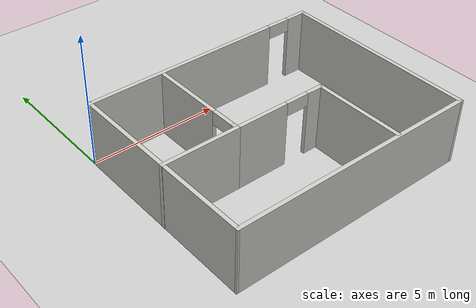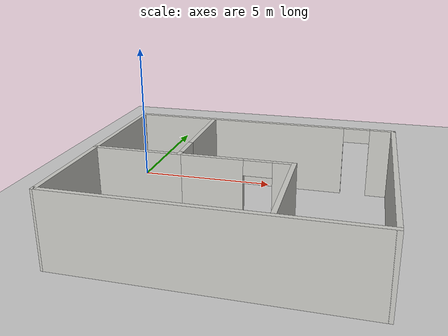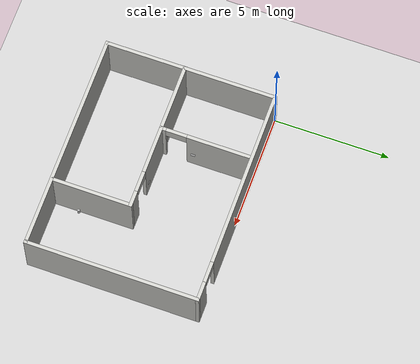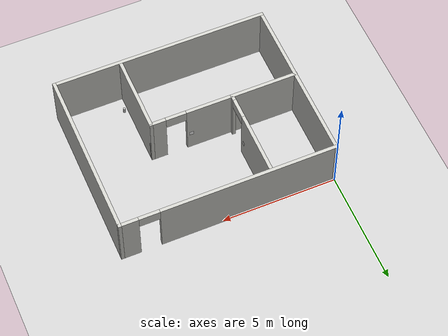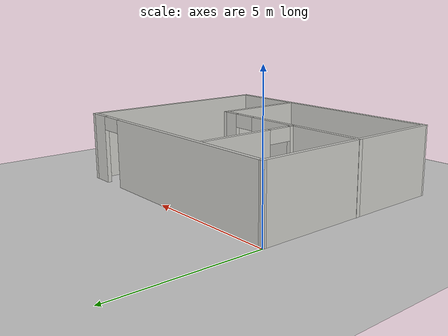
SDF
<sdf version="1.6">
 <world name="default">
  <light name="sun" type="directional">
   <pose>0 0 10 0 -0 0</pose>
   <diffuse>0.8 0.8 0.8 1</diffuse>
   <specular>0.1 0.1 0.1 1</specular>
   <attenuation>
    <range>1000</range>
    <constant>0.9</constant>
    <linear>0.01</linear>
    <quadratic>0.001</quadratic>
   </attenuation>
   <direction>-0.5 0.5 -1</direction>
  </light>
  <model name="ground_plane">
   <static>1</static>
   <link name="link">
    <collision name="collision">
     <geometry><plane><normal>0 0 1</normal><size>100 100</size></plane></geometry>
     <surface><friction><ode><mu>100</mu><mu2>50</mu2></ode></friction></surface>
    </collision>
    <visual name="visual">
     <cast_shadows>0</cast_shadows>
     <geometry><plane><normal>0 0 1</normal><size>100 100</size></plane></geometry>
     <material>
      <script><uri>file://media/materials/scripts/gazebo.material</uri><name>Gazebo/Grey</name></script>
     </material>
    </visual>
   </link>
  </model>
  <gravity>0 0 -9.8</gravity>
  <magnetic_field>6e-06 2.3e-05 -4.2e-05</magnetic_field>
  <atmosphere type="adiabatic"/>
  <physics name="default_physics" default="0" type="ode">
   <max_step_size>0.001</max_step_size>
   <real_time_factor>1</real_time_factor>
   <real_time_update_rate>1000</real_time_update_rate>
  </physics>
  <scene><ambient>0.4 0.4 0.4 1</ambient><background>0.7 0.7 0.7 1</background><shadows>1</shadows></scene>
  <spherical_coordinates>
   <surface_model>EARTH_WGS84</surface_model>
   <latitude_deg>0</latitude_deg>
   <longitude_deg>0</longitude_deg>
   <elevation>0</elevation>
   <heading_deg>0</heading_deg>
  </spherical_coordinates>
  <model name="bioloid_house">
   <pose>4.72569 -3.70695 0 0 -0 0</pose>
   <link name="Wall_0">
    <collision name="Wall_0_Collision">
     <geometry><box><size>7.50023 0.15 2.5</size></box></geometry>
     <pose>0 0 1.25 0 -0 0</pose>
    </collision>
    <visual name="Wall_0_Visual">
     <pose>0 0 1.25 0 -0 0</pose>
     <geometry><box><size>7.50023 0.15 2.5</size></box></geometry>
     <material>
      <script><uri>file://media/materials/scripts/gazebo.material</uri><name>Gazebo/CeilingTiled</name></script>
      <ambient>1 1 1 1</ambient>
     </material>
    </visual>
    <pose>-4.66853 0 0 0 0 -1.56965</pose>
   </link>
   <link name="Wall_1">
    <collision name="Wall_1_Collision">
     <geometry><box><size>9.49158 0.15 2.5</size></box></geometry>
     <pose>0 0 1.25 0 -0 0</pose>
    </collision>
    <visual name="Wall_1_Visual">
     <pose>0 0 1.25 0 -0 0</pose>
     <geometry><box><size>9.49158 0.15 2.5</size></box></geometry>
     <material>
      <script><uri>file://media/materials/scripts/gazebo.material</uri><name>Gazebo/CeilingTiled</name></script>
      <ambient>1 1 1 1</ambient>
     </material>
    </visual>
    <pose>0.006466 -3.675 0 0 -0 2.5e-05</pose>
   </link>
   <link name="Wall_2">
    <collision name="Wall_2_Collision">
     <geometry><box><size>7.5 0.15 2.5</size></box></geometry>
     <pose>0 0 1.25 0 -0 0</pose>
    </collision>
    <visual name="Wall_2_Visual">
     <pose>0 0 1.25 0 -0 0</pose>
     <geometry><box><size>7.5 0.15 2.5</size></box></geometry>
     <material>
      <script><uri>file://media/materials/scripts/gazebo.material</uri><name>Gazebo/CeilingTiled</name></script>
      <ambient>1 1 1 1</ambient>
     </material>
    </visual>
    <pose>4.67726 0.000115 0 0 -0 1.5708</pose>
   </link>
   <link name="Wall_3">
    <pose>0.002257 3.67511 0 0 -0 3.14159</pose>
    <visual name="Wall_3_Visual_0">
     <pose>-4.31524 0 1.25 0 -0 0</pose>
     <geometry><box><size>0.869524 0.15 2.5</size></box></geometry>
     <material>
      <script><uri>file://media/materials/scripts/gazebo.material</uri><name>Gazebo/CeilingTiled</name></script>
      <ambient>1 1 1 1</ambient>
     </material>
    </visual>
    <collision name="Wall_3_Collision_0">
     <geometry><box><size>0.869524 0.15 2.5</size></box></geometry>
     <pose>-4.31524 0 1.25 0 -0 0</pose>
    </collision>
    <visual name="Wall_3_Visual_1">
     <pose>0.884762 0 1.25 0 -0 0</pose>
     <geometry><box><size>7.73048 0.15 2.5</size></box></geometry>
     <material>
      <script><uri>file://media/materials/scripts/gazebo.material</uri><name>Gazebo/CeilingTiled</name></script>
      <ambient>1 1 1 1</ambient>
     </material>
    </visual>
    <collision name="Wall_3_Collision_1">
     <geometry><box><size>7.73048 0.15 2.5</size></box></geometry>
     <pose>0.884762 0 1.25 0 -0 0</pose>
    </collision>
    <visual name="Wall_3_Visual_2">
     <pose>-3.43048 0 2.25 0 -0 0</pose>
     <geometry><box><size>0.9 0.15 0.5</size></box></geometry>
     <material>
      <script><uri>file://media/materials/scripts/gazebo.material</uri><name>Gazebo/CeilingTiled</name></script>
      <ambient>1 1 1 1</ambient>
     </material>
    </visual>
    <collision name="Wall_3_Collision_2">
     <geometry><box><size>0.9 0.15 0.5</size></box></geometry>
     <pose>-3.43048 0 2.25 0 -0 0</pose>
    </collision>
   </link>
   <link name="Wall_5">
    <pose>-1.82726 1.66705 0 0 0 -1.5708</pose>
    <visual name="Wall_5_Visual_0">
     <pose>-0.596948 0 1.25 0 -0 0</pose>
     <geometry><box><size>2.8061 0.15 2.5</size></box></geometry>
     <material>
      <script><uri>file://media/materials/scripts/gazebo.material</uri><name>Gazebo/CeilingTiled</name></script>
      <ambient>1 1 1 1</ambient>
     </material>
    </visual>
    <collision name="Wall_5_Collision_0">
     <geometry><box><size>2.8061 0.15 2.5</size></box></geometry>
     <pose>-0.596948 0 1.25 0 -0 0</pose>
    </collision>
    <visual name="Wall_5_Visual_1">
     <pose>1.85305 0 1.25 0 -0 0</pose>
     <geometry><box><size>0.293896 0.15 2.5</size></box></geometry>
     <material>
      <script><uri>file://media/materials/scripts/gazebo.material</uri><name>Gazebo/CeilingTiled</name></script>
      <ambient>1 1 1 1</ambient>
     </material>
    </visual>
    <collision name="Wall_5_Collision_1">
     <geometry><box><size>0.293896 0.15 2.5</size></box></geometry>
     <pose>1.85305 0 1.25 0 -0 0</pose>
    </collision>
    <visual name="Wall_5_Visual_2">
     <pose>1.2561 0 2.25 0 -0 0</pose>
     <geometry><box><size>0.9 0.15 0.5</size></box></geometry>
     <material>
      <script><uri>file://media/materials/scripts/gazebo.material</uri><name>Gazebo/CeilingTiled</name></script>
      <ambient>1 1 1 1</ambient>
     </material>
    </visual>
    <collision name="Wall_5_Collision_2">
     <geometry><box><size>0.9 0.15 0.5</size></box></geometry>
     <pose>1.2561 0 2.25 0 -0 0</pose>
    </collision>
   </link>
   <link name="Wall_6">
    <collision name="Wall_6_Collision">
     <geometry><box><size>3 0.15 2.5</size></box></geometry>
     <pose>0 0 1.25 0 -0 0</pose>
    </collision>
    <visual name="Wall_6_Visual">
     <pose>0 0 1.25 0 -0 0</pose>
     <geometry><box><size>3 0.15 2.5</size></box></geometry>
     <material>
      <script><uri>file://media/materials/scripts/gazebo.material</uri><name>Gazebo/CeilingTiled</name></script>
      <ambient>1 1 1 1</ambient>
     </material>
    </visual>
    <pose>-3.25226 -0.257952 0 0 -0 3.14159</pose>
   </link>
   <link name="Wall_8">
    <pose>-0.027259 -0.257952 0 0 -0 0</pose>
    <visual name="Wall_8_Visual_0">
     <pose>-0.807904 0 1.25 0 -0 0</pose>
     <geometry><box><size>2.13419 0.15 2.5</size></box></geometry>
     <material>
      <script><uri>file://media/materials/scripts/gazebo.material</uri><name>Gazebo/CeilingTiled</name></script>
      <ambient>1 1 1 1</ambient>
     </material>
    </visual>
    <collision name="Wall_8_Collision_0">
     <geometry><box><size>2.13419 0.15 2.5</size></box></geometry>
     <pose>-0.807904 0 1.25 0 -0 0</pose>
    </collision>
    <visual name="Wall_8_Visual_1">
     <pose>1.5171 0 1.25 0 -0 0</pose>
     <geometry><box><size>0.715808 0.15 2.5</size></box></geometry>
     <material>
      <script><uri>file://media/materials/scripts/gazebo.material</uri><name>Gazebo/CeilingTiled</name></script>
      <ambient>1 1 1 1</ambient>
     </material>
    </visual>
    <collision name="Wall_8_Collision_1">
     <geometry><box><size>0.715808 0.15 2.5</size></box></geometry>
     <pose>1.5171 0 1.25 0 -0 0</pose>
    </collision>
    <visual name="Wall_8_Visual_2">
     <pose>0.709192 0 2.25 0 -0 0</pose>
     <geometry><box><size>0.9 0.15 0.5</size></box></geometry>
     <material>
      <script><uri>file://media/materials/scripts/gazebo.material</uri><name>Gazebo/CeilingTiled</name></script>
      <ambient>1 1 1 1</ambient>
     </material>
    </visual>
    <collision name="Wall_8_Collision_2">
     <geometry><box><size>0.9 0.15 0.5</size></box></geometry>
     <pose>0.709192 0 2.25 0 -0 0</pose>
    </collision>
   </link>
   <link name="Wall_9">
    <collision name="Wall_9_Collision">
     <geometry><box><size>3.5 0.15 2.5</size></box></geometry>
     <pose>0 0 1.25 0 -0 0</pose>
    </collision>
    <visual name="Wall_9_Visual">
     <pose>0 0 1.25 0 -0 0</pose>
     <geometry><box><size>3.5 0.15 2.5</size></box></geometry>
     <material>
      <script><uri>file://media/materials/scripts/gazebo.material</uri><name>Gazebo/CeilingTiled</name></script>
      <ambient>1 1 1 1</ambient>
     </material>
    </visual>
    <pose>1.77274 -1.93295 0 0 0 -1.5708</pose>
   </link>
   <static>1</static>
  </model>
  <model name="aruco_visual_marker_1">
   <link name="marker">
    <visual name="visual">
     <geometry><box><size>0.1778 0.1778 1e-05</size></box></geometry>
     <material>
      <script>
       <uri>model://aruco_visual_marker_1/materials/scripts</uri>
       <uri>model://aruco_visual_marker_1/materials/textures</uri>
       <name>ArucoVisualMarker1/Marker</name>
      </script>
      <ambient>1 1 1 1</ambient>
      <diffuse>1 1 1 1</diffuse>
      <specular>0 0 0 1</specular>
      <emissive>1 1 1 0</emissive>
      <shader type="vertex"><normal_map>__default__</normal_map></shader>
     </material>
    </visual>
    <collision name="collision"><geometry><box><size>0.1778 0.1778 1e-05</size></box></geometry></collision>
   </link>
   <link name="marker_pad">
    <pose frame="marker">0 0 -1e-05 0 -0 0</pose>
    <visual name="visual">
     <geometry><box><size>0.1778 0.1778 1e-05</size></box></geometry>
     <material>
      <lighting>1</lighting>
      <script><uri>file://media/materials/scripts/gazebo.material</uri><name>Gazebo/White</name></script>
      <ambient>0.3 0.3 0.3 1</ambient>
      <diffuse>0.7 0.7 0.7 1</diffuse>
      <specular>0.01 0.01 0.01 1</specular>
      <emissive>1 1 1 0</emissive>
      <shader type="vertex"><normal_map>__default__</normal_map></shader>
     </material>
    </visual>
    <collision name="collision"><geometry><box><size>0.1778 0.1778 1e-05</size></box></geometry></collision>
   </link>
   <joint name="marker_JOINT_marker_pad" type="revolute">
    <parent>marker</parent>
    <child>marker_pad</child>
    <axis>
     <xyz>0 0 1</xyz>
     <limit><upper>0</upper><lower>0</lower></limit>
     <use_parent_model_frame>0</use_parent_model_frame>
     <dynamics><spring_reference>0</spring_reference><spring_stiffness>0</spring_stiffness></dynamics>
    </axis>
   </joint>
   <static>1</static>
   <pose>2.99673 -2.56363 0.947361 0 -1.50809 -3.11559</pose>
  </model>
  <model name="aruco_visual_marker_2">
   <link name="marker">
    <visual name="visual">
     <geometry><box><size>0.1778 0.1778 1e-05</size></box></geometry>
     <material>
      <script>
       <uri>model://aruco_visual_marker_2/materials/scripts</uri>
       <uri>model://aruco_visual_marker_2/materials/textures</uri>
       <name>ArucoVisualMarker2/Marker</name>
      </script>
      <ambient>1 1 1 1</ambient>
      <diffuse>1 1 1 1</diffuse>
      <specular>0 0 0 1</specular>
      <emissive>1 1 1 0</emissive>
      <shader type="vertex"><normal_map>__default__</normal_map></shader>
     </material>
    </visual>
    <collision name="collision"><geometry><box><size>0.1778 0.1778 1e-05</size></box></geometry></collision>
   </link>
   <link name="marker_pad">
    <pose frame="marker">0 0 -1e-05 0 -0 0</pose>
    <visual name="visual">
     <geometry><box><size>0.1778 0.1778 1e-05</size></box></geometry>
     <material>
      <lighting>1</lighting>
      <script><uri>file://media/materials/scripts/gazebo.material</uri><name>Gazebo/White</name></script>
      <ambient>0.3 0.3 0.3 1</ambient>
      <diffuse>0.7 0.7 0.7 1</diffuse>
      <specular>0.01 0.01 0.01 1</specular>
      <emissive>1 1 1 0</emissive>
      <shader type="vertex"><normal_map>__default__</normal_map></shader>
     </material>
    </visual>
    <collision name="collision"><geometry><box><size>0.1778 0.1778 1e-05</size></box></geometry></collision>
   </link>
   <joint name="marker_JOINT_marker_pad" type="revolute">
    <parent>marker</parent>
    <child>marker_pad</child>
    <axis>
     <xyz>0 0 1</xyz>
     <limit><upper>0</upper><lower>0</lower></limit>
     <use_parent_model_frame>0</use_parent_model_frame>
     <dynamics><spring_reference>0</spring_reference><spring_stiffness>0</spring_stiffness></dynamics>
    </axis>
   </joint>
   <static>1</static>
   <pose>4.78698 -3.82762 1.05717 0 -1.49431 -1.63689</pose>
  </model>
  <model name="beer">
   <link name="link">
    <pose>0 0 0.115 0 -0 0</pose>
    <inertial>
     <mass>0.39</mass>
     <inertia><ixx>0.00058</ixx><ixy>0</ixy><ixz>0</ixz><iyy>0.00058</iyy><iyz>0</iyz><izz>0.00019</izz></inertia>
    </inertial>
    <collision name="collision">
     <geometry><cylinder><radius>0.055</radius><length>0.23</length></cylinder></geometry>
    </collision>
    <visual name="visual">
     <geometry><cylinder><radius>0.055</radius><length>0.23</length></cylinder></geometry>
     <material>
      <script>
       <uri>model://beer/materials/scripts</uri>
       <uri>model://beer/materials/textures</uri>
       <name>Beer/Diffuse</name>
      </script>
     </material>
    </visual>
   </link>
   <pose>6.88677 -6.13025 0.775001 2e-05 7e-06 0.000631</pose>
  </model>
 </world>
</sdf>
